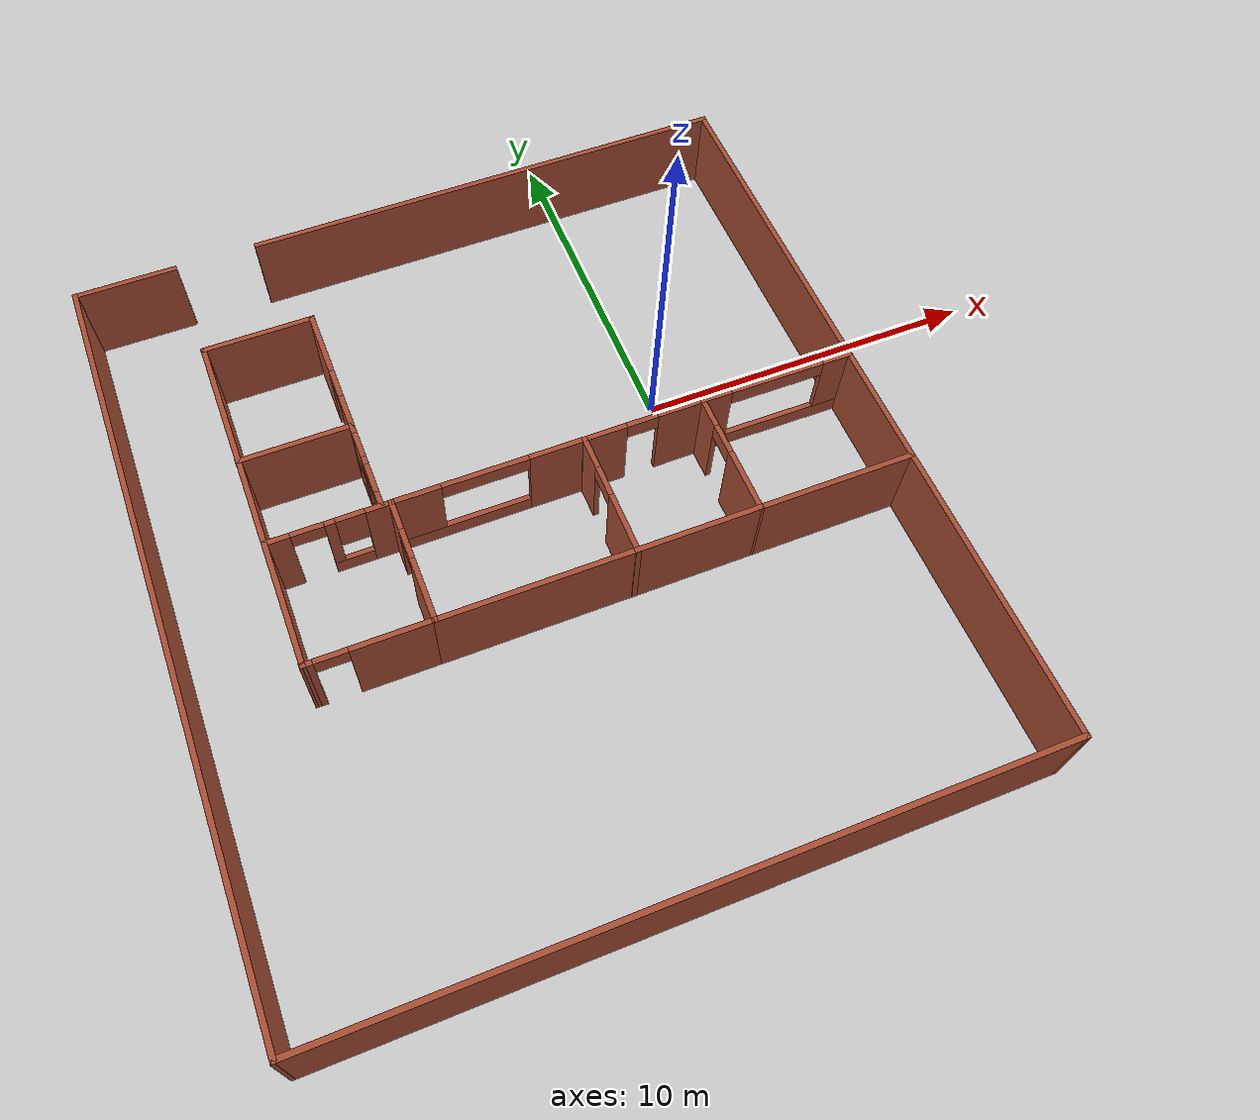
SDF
<?xml version='1.0'?>
<sdf version='1.7'>
  <model name='home'>
    <pose>-4.75168 -2.83982 0 0 -0 0</pose>
    <link name='Wall_102'>
      <collision name='Wall_102_Collision'>
        <geometry>
          <box>
            <size>4.5503 0.15 2.5</size>
          </box>
        </geometry>
        <pose>0 0 1.25 0 -0 0</pose>
      </collision>
      <visual name='Wall_102_Visual'>
        <pose>0 0 1.25 0 -0 0</pose>
        <geometry>
          <box>
            <size>4.5503 0.15 2.5</size>
          </box>
        </geometry>
        <material>
          <script>
            <uri>file://media/materials/scripts/gazebo.material</uri>
            <name>Gazebo/Bricks</name>
          </script>
          <ambient>1 1 1 1</ambient>
        </material>
        <meta>
          <layer>0</layer>
        </meta>
      </visual>
      <pose>7.542 -2.47535 0 0 -0 3.14159</pose>
    </link>
    <link name='Wall_105'>
      <pose>0.073453 10.8099 0 0 -0 0</pose>
      <visual name='Wall_105_Visual_0'>
        <pose>-8.32911 0 1.25 0 -0 0</pose>
        <geometry>
          <box>
            <size>2.84179 0.15 2.5</size>
          </box>
        </geometry>
        <material>
          <script>
            <uri>file://media/materials/scripts/gazebo.material</uri>
            <name>Gazebo/Bricks</name>
          </script>
          <ambient>1 1 1 1</ambient>
        </material>
        <meta>
          <layer>0</layer>
        </meta>
      </visual>
      <collision name='Wall_105_Collision_0'>
        <geometry>
          <box>
            <size>2.84179 0.15 2.5</size>
          </box>
        </geometry>
        <pose>-8.32911 0 1.25 0 -0 0</pose>
      </collision>
      <visual name='Wall_105_Visual_1'>
        <pose>2.57089 0 1.25 0 -0 0</pose>
        <geometry>
          <box>
            <size>14.3582 0.15 2.5</size>
          </box>
        </geometry>
        <material>
          <script>
            <uri>file://media/materials/scripts/gazebo.material</uri>
            <name>Gazebo/Bricks</name>
          </script>
          <ambient>1 1 1 1</ambient>
        </material>
        <meta>
          <layer>0</layer>
        </meta>
      </visual>
      <collision name='Wall_105_Collision_1'>
        <geometry>
          <box>
            <size>14.3582 0.15 2.5</size>
          </box>
        </geometry>
        <pose>2.57089 0 1.25 0 -0 0</pose>
      </collision>
    </link>
    <link name='Wall_110'>
      <pose>7.542 1.08566 0 0 -0 -0.007031</pose>
      <visual name='Wall_110_Visual_0'>
        <pose>-1.81389 0 1.25 0 -0 0</pose>
        <geometry>
          <box>
            <size>0.922511 0.15 2.5</size>
          </box>
        </geometry>
        <material>
          <script>
            <uri>file://media/materials/scripts/gazebo.material</uri>
            <name>Gazebo/Bricks</name>
          </script>
          <ambient>1 1 1 1</ambient>
        </material>
        <meta>
          <layer>0</layer>
        </meta>
      </visual>
      <collision name='Wall_110_Collision_0'>
        <geometry>
          <box>
            <size>0.922511 0.15 2.5</size>
          </box>
        </geometry>
        <pose>-1.81389 0 1.25 0 -0 0</pose>
      </collision>
      <visual name='Wall_110_Visual_1'>
        <pose>0.461255 0 0.25 0 -0 0</pose>
        <geometry>
          <box>
            <size>3.62778 0.15 0.5</size>
          </box>
        </geometry>
        <material>
          <script>
            <uri>file://media/materials/scripts/gazebo.material</uri>
            <name>Gazebo/Bricks</name>
          </script>
          <ambient>1 1 1 1</ambient>
        </material>
        <meta>
          <layer>0</layer>
        </meta>
      </visual>
      <collision name='Wall_110_Collision_1'>
        <geometry>
          <box>
            <size>3.62778 0.15 0.5</size>
          </box>
        </geometry>
        <pose>0.461255 0 0.25 0 -0 0</pose>
      </collision>
      <visual name='Wall_110_Visual_2'>
        <pose>1.82726 0 1.5 0 -0 0</pose>
        <geometry>
          <box>
            <size>0.895784 0.15 2</size>
          </box>
        </geometry>
        <material>
          <script>
            <uri>file://media/materials/scripts/gazebo.material</uri>
            <name>Gazebo/Bricks</name>
          </script>
          <ambient>1 1 1 1</ambient>
        </material>
        <meta>
          <layer>0</layer>
        </meta>
      </visual>
      <collision name='Wall_110_Collision_2'>
        <geometry>
          <box>
            <size>0.895784 0.15 2</size>
          </box>
        </geometry>
        <pose>1.82726 0 1.5 0 -0 0</pose>
      </collision>
      <visual name='Wall_110_Visual_3'>
        <pose>0.013363 0 2.25 0 -0 0</pose>
        <geometry>
          <box>
            <size>2.732 0.15 0.5</size>
          </box>
        </geometry>
        <material>
          <script>
            <uri>file://media/materials/scripts/gazebo.material</uri>
            <name>Gazebo/Bricks</name>
          </script>
          <ambient>1 1 1 1</ambient>
        </material>
        <meta>
          <layer>0</layer>
        </meta>
      </visual>
      <collision name='Wall_110_Collision_3'>
        <geometry>
          <box>
            <size>2.732 0.15 0.5</size>
          </box>
        </geometry>
        <pose>0.013363 0 2.25 0 -0 0</pose>
      </collision>
    </link>
    <link name='Wall_111'>
      <collision name='Wall_111_Collision'>
        <geometry>
          <box>
            <size>3.68548 0.15 2.5</size>
          </box>
        </geometry>
        <pose>0 0 1.25 0 -0 0</pose>
      </collision>
      <visual name='Wall_111_Visual'>
        <pose>0 0 1.25 0 -0 0</pose>
        <geometry>
          <box>
            <size>3.68548 0.15 2.5</size>
          </box>
        </geometry>
        <material>
          <script>
            <uri>file://media/materials/scripts/gazebo.material</uri>
            <name>Gazebo/Bricks</name>
          </script>
          <ambient>1 1 1 1</ambient>
        </material>
        <meta>
          <layer>0</layer>
        </meta>
      </visual>
      <pose>9.74215 -0.69755 0 0 -0 -1.5708</pose>
    </link>
    <link name='Wall_114'>
      <collision name='Wall_114_Collision'>
        <geometry>
          <box>
            <size>9.75 0.15 2.5</size>
          </box>
        </geometry>
        <pose>0 0 1.25 0 -0 0</pose>
      </collision>
      <visual name='Wall_114_Visual'>
        <pose>0 0 1.25 0 -0 0</pose>
        <geometry>
          <box>
            <size>9.75 0.15 2.5</size>
          </box>
        </geometry>
        <material>
          <script>
            <uri>file://media/materials/scripts/gazebo.material</uri>
            <name>Gazebo/Bricks</name>
          </script>
          <ambient>1 1 1 1</ambient>
        </material>
        <meta>
          <layer>0</layer>
        </meta>
      </visual>
      <pose>9.74215 5.90113 0 0 -0 1.5708</pose>
    </link>
    <link name='Wall_116'>
      <collision name='Wall_116_Collision'>
        <geometry>
          <box>
            <size>8.5 0.15 2.5</size>
          </box>
        </geometry>
        <pose>0 0 1.25 0 -0 0</pose>
      </collision>
      <visual name='Wall_116_Visual'>
        <pose>0 0 1.25 0 -0 0</pose>
        <geometry>
          <box>
            <size>8.5 0.15 2.5</size>
          </box>
        </geometry>
        <material>
          <script>
            <uri>file://media/materials/scripts/gazebo.material</uri>
            <name>Gazebo/Bricks</name>
          </script>
          <ambient>1 1 1 1</ambient>
        </material>
        <meta>
          <layer>0</layer>
        </meta>
      </visual>
      <pose>9.74215 -6.64029 0 0 -0 -1.5708</pose>
    </link>
    <link name='Wall_117'>
      <collision name='Wall_117_Collision'>
        <geometry>
          <box>
            <size>19.61 0.15 2.5</size>
          </box>
        </geometry>
        <pose>0 0 1.25 0 -0 0</pose>
      </collision>
      <visual name='Wall_117_Visual'>
        <pose>0 0 1.25 0 -0 0</pose>
        <geometry>
          <box>
            <size>19.61 0.15 2.5</size>
          </box>
        </geometry>
        <material>
          <script>
            <uri>file://media/materials/scripts/gazebo.material</uri>
            <name>Gazebo/Bricks</name>
          </script>
          <ambient>1 1 1 1</ambient>
        </material>
        <meta>
          <layer>0</layer>
        </meta>
      </visual>
      <pose>0.012142 -10.7999 0 0 -0 3.14002</pose>
    </link>
    <link name='Wall_118'>
      <collision name='Wall_118_Collision'>
        <geometry>
          <box>
            <size>21.75 0.15 2.5</size>
          </box>
        </geometry>
        <pose>0 0 1.25 0 -0 0</pose>
      </collision>
      <visual name='Wall_118_Visual'>
        <pose>0 0 1.25 0 -0 0</pose>
        <geometry>
          <box>
            <size>21.75 0.15 2.5</size>
          </box>
        </geometry>
        <material>
          <script>
            <uri>file://media/materials/scripts/gazebo.material</uri>
            <name>Gazebo/Bricks</name>
          </script>
          <ambient>1 1 1 1</ambient>
        </material>
        <meta>
          <layer>0</layer>
        </meta>
      </visual>
      <pose>-9.74845 0.015407 0 0 -0 1.5708</pose>
    </link>
    <link name='Wall_128'>
      <collision name='Wall_128_Collision'>
        <geometry>
          <box>
            <size>3.25 0.15 2.5</size>
          </box>
        </geometry>
        <pose>0 0 1.25 0 -0 0</pose>
      </collision>
      <visual name='Wall_128_Visual'>
        <pose>0 0 1.25 0 -0 0</pose>
        <geometry>
          <box>
            <size>3.25 0.15 2.5</size>
          </box>
        </geometry>
        <material>
          <script>
            <uri>file://media/materials/scripts/gazebo.material</uri>
            <name>Gazebo/Bricks</name>
          </script>
          <ambient>1 1 1 1</ambient>
        </material>
        <meta>
          <layer>0</layer>
        </meta>
      </visual>
      <pose>-5.25956 7.62772 0 0 -0 3.14159</pose>
    </link>
    <link name='Wall_134'>
      <pose>-3.71403 5.67265 0 0 -0 1.5708</pose>
      <visual name='Wall_134_Visual_0'>
        <pose>-1.44601 0 1.25 0 -0 0</pose>
        <geometry>
          <box>
            <size>1.10798 0.15 2.5</size>
          </box>
        </geometry>
        <material>
          <script>
            <uri>file://media/materials/scripts/gazebo.material</uri>
            <name>Gazebo/Bricks</name>
          </script>
          <ambient>1 1 1 1</ambient>
        </material>
        <meta>
          <layer>0</layer>
        </meta>
      </visual>
      <collision name='Wall_134_Collision_0'>
        <geometry>
          <box>
            <size>1.10798 0.15 2.5</size>
          </box>
        </geometry>
        <pose>-1.44601 0 1.25 0 -0 0</pose>
      </collision>
      <visual name='Wall_134_Visual_1'>
        <pose>1.00399 0 1.25 0 -0 0</pose>
        <geometry>
          <box>
            <size>1.99202 0.15 2.5</size>
          </box>
        </geometry>
        <material>
          <script>
            <uri>file://media/materials/scripts/gazebo.material</uri>
            <name>Gazebo/Bricks</name>
          </script>
          <ambient>1 1 1 1</ambient>
        </material>
        <meta>
          <layer>0</layer>
        </meta>
      </visual>
      <collision name='Wall_134_Collision_1'>
        <geometry>
          <box>
            <size>1.99202 0.15 2.5</size>
          </box>
        </geometry>
        <pose>1.00399 0 1.25 0 -0 0</pose>
      </collision>
      <visual name='Wall_134_Visual_2'>
        <pose>-0.442023 0 2.25 0 -0 0</pose>
        <geometry>
          <box>
            <size>0.9 0.15 0.5</size>
          </box>
        </geometry>
        <material>
          <script>
            <uri>file://media/materials/scripts/gazebo.material</uri>
            <name>Gazebo/Bricks</name>
          </script>
          <ambient>1 1 1 1</ambient>
        </material>
        <meta>
          <layer>0</layer>
        </meta>
      </visual>
      <collision name='Wall_134_Collision_2'>
        <geometry>
          <box>
            <size>0.9 0.15 0.5</size>
          </box>
        </geometry>
        <pose>-0.442023 0 2.25 0 -0 0</pose>
      </collision>
    </link>
    <link name='Wall_138'>
      <pose>-3.45599 -0.690284 0 0 -0 -1.57324</pose>
      <visual name='Wall_138_Visual_0'>
        <pose>-1.40379 0 1.25 0 -0 0</pose>
        <geometry>
          <box>
            <size>0.916195 0.15 2.5</size>
          </box>
        </geometry>
        <material>
          <script>
            <uri>file://media/materials/scripts/gazebo.material</uri>
            <name>Gazebo/Bricks</name>
          </script>
          <ambient>1 1 1 1</ambient>
        </material>
        <meta>
          <layer>0</layer>
        </meta>
      </visual>
      <collision name='Wall_138_Collision_0'>
        <geometry>
          <box>
            <size>0.916195 0.15 2.5</size>
          </box>
        </geometry>
        <pose>-1.40379 0 1.25 0 -0 0</pose>
      </collision>
      <visual name='Wall_138_Visual_1'>
        <pose>0.908098 0 1.25 0 -0 0</pose>
        <geometry>
          <box>
            <size>1.90758 0.15 2.5</size>
          </box>
        </geometry>
        <material>
          <script>
            <uri>file://media/materials/scripts/gazebo.material</uri>
            <name>Gazebo/Bricks</name>
          </script>
          <ambient>1 1 1 1</ambient>
        </material>
        <meta>
          <layer>0</layer>
        </meta>
      </visual>
      <collision name='Wall_138_Collision_1'>
        <geometry>
          <box>
            <size>1.90758 0.15 2.5</size>
          </box>
        </geometry>
        <pose>0.908098 0 1.25 0 -0 0</pose>
      </collision>
      <visual name='Wall_138_Visual_2'>
        <pose>-0.495693 0 2.25 0 -0 0</pose>
        <geometry>
          <box>
            <size>0.9 0.15 0.5</size>
          </box>
        </geometry>
        <material>
          <script>
            <uri>file://media/materials/scripts/gazebo.material</uri>
            <name>Gazebo/Bricks</name>
          </script>
          <ambient>1 1 1 1</ambient>
        </material>
        <meta>
          <layer>0</layer>
        </meta>
      </visual>
      <collision name='Wall_138_Collision_2'>
        <geometry>
          <box>
            <size>0.9 0.15 0.5</size>
          </box>
        </geometry>
        <pose>-0.495693 0 2.25 0 -0 0</pose>
      </collision>
    </link>
    <link name='Wall_139'>
      <pose>-5.1441 -2.47717 0 0 -0 3.14159</pose>
      <visual name='Wall_139_Visual_0'>
        <pose>-0.614696 0 1.25 0 -0 0</pose>
        <geometry>
          <box>
            <size>2.27061 0.15 2.5</size>
          </box>
        </geometry>
        <material>
          <script>
            <uri>file://media/materials/scripts/gazebo.material</uri>
            <name>Gazebo/Bricks</name>
          </script>
          <ambient>1 1 1 1</ambient>
        </material>
        <meta>
          <layer>0</layer>
        </meta>
      </visual>
      <collision name='Wall_139_Collision_0'>
        <geometry>
          <box>
            <size>2.27061 0.15 2.5</size>
          </box>
        </geometry>
        <pose>-0.614696 0 1.25 0 -0 0</pose>
      </collision>
      <visual name='Wall_139_Visual_1'>
        <pose>1.5853 0 1.25 0 -0 0</pose>
        <geometry>
          <box>
            <size>0.329391 0.15 2.5</size>
          </box>
        </geometry>
        <material>
          <script>
            <uri>file://media/materials/scripts/gazebo.material</uri>
            <name>Gazebo/Bricks</name>
          </script>
          <ambient>1 1 1 1</ambient>
        </material>
        <meta>
          <layer>0</layer>
        </meta>
      </visual>
      <collision name='Wall_139_Collision_1'>
        <geometry>
          <box>
            <size>0.329391 0.15 2.5</size>
          </box>
        </geometry>
        <pose>1.5853 0 1.25 0 -0 0</pose>
      </collision>
      <visual name='Wall_139_Visual_2'>
        <pose>0.970609 0 2.25 0 -0 0</pose>
        <geometry>
          <box>
            <size>0.9 0.15 0.5</size>
          </box>
        </geometry>
        <material>
          <script>
            <uri>file://media/materials/scripts/gazebo.material</uri>
            <name>Gazebo/Bricks</name>
          </script>
          <ambient>1 1 1 1</ambient>
        </material>
        <meta>
          <layer>0</layer>
        </meta>
      </visual>
      <collision name='Wall_139_Collision_2'>
        <geometry>
          <box>
            <size>0.9 0.15 0.5</size>
          </box>
        </geometry>
        <pose>0.970609 0 2.25 0 -0 0</pose>
      </collision>
    </link>
    <link name='Wall_140'>
      <collision name='Wall_140_Collision'>
        <geometry>
          <box>
            <size>10.2238 0.15 2.5</size>
          </box>
        </geometry>
        <pose>0 0 1.25 0 -0 0</pose>
      </collision>
      <visual name='Wall_140_Visual'>
        <pose>0 0 1.25 0 -0 0</pose>
        <geometry>
          <box>
            <size>10.2238 0.15 2.5</size>
          </box>
        </geometry>
        <material>
          <script>
            <uri>file://media/materials/scripts/gazebo.material</uri>
            <name>Gazebo/Bricks</name>
          </script>
          <ambient>1 1 1 1</ambient>
        </material>
        <meta>
          <layer>0</layer>
        </meta>
      </visual>
      <pose>-6.80599 2.55972 0 0 -0 1.56993</pose>
    </link>
    <link name='Wall_142'>
      <collision name='Wall_142_Collision'>
        <geometry>
          <box>
            <size>3.25 0.15 2.5</size>
          </box>
        </geometry>
        <pose>0 0 1.25 0 -0 0</pose>
      </collision>
      <visual name='Wall_142_Visual'>
        <pose>0 0 1.25 0 -0 0</pose>
        <geometry>
          <box>
            <size>3.25 0.15 2.5</size>
          </box>
        </geometry>
        <material>
          <script>
            <uri>file://media/materials/scripts/gazebo.material</uri>
            <name>Gazebo/Bricks</name>
          </script>
          <ambient>1 1 1 1</ambient>
        </material>
        <meta>
          <layer>0</layer>
        </meta>
      </visual>
      <pose>-5.26403 3.74764 0 0 -0 3.14159</pose>
    </link>
    <link name='Wall_144'>
      <pose>-5.12661 1.0966 0 0 -0 3.14159</pose>
      <visual name='Wall_144_Visual_0'>
        <pose>-1.35862 0 1.25 0 -0 0</pose>
        <geometry>
          <box>
            <size>0.782765 0.15 2.5</size>
          </box>
        </geometry>
        <material>
          <script>
            <uri>file://media/materials/scripts/gazebo.material</uri>
            <name>Gazebo/Bricks</name>
          </script>
          <ambient>1 1 1 1</ambient>
        </material>
        <meta>
          <layer>0</layer>
        </meta>
      </visual>
      <collision name='Wall_144_Collision_0'>
        <geometry>
          <box>
            <size>0.782765 0.15 2.5</size>
          </box>
        </geometry>
        <pose>-1.35862 0 1.25 0 -0 0</pose>
      </collision>
      <visual name='Wall_144_Visual_1'>
        <pose>1.3863 0 1.25 0 -0 0</pose>
        <geometry>
          <box>
            <size>0.7274 0.15 2.5</size>
          </box>
        </geometry>
        <material>
          <script>
            <uri>file://media/materials/scripts/gazebo.material</uri>
            <name>Gazebo/Bricks</name>
          </script>
          <ambient>1 1 1 1</ambient>
        </material>
        <meta>
          <layer>0</layer>
        </meta>
      </visual>
      <collision name='Wall_144_Collision_1'>
        <geometry>
          <box>
            <size>0.7274 0.15 2.5</size>
          </box>
        </geometry>
        <pose>1.3863 0 1.25 0 -0 0</pose>
      </collision>
      <visual name='Wall_144_Visual_2'>
        <pose>-0.422317 0 0.25 0 -0 0</pose>
        <geometry>
          <box>
            <size>1.08984 0.15 0.5</size>
          </box>
        </geometry>
        <material>
          <script>
            <uri>file://media/materials/scripts/gazebo.material</uri>
            <name>Gazebo/Bricks</name>
          </script>
          <ambient>1 1 1 1</ambient>
        </material>
        <meta>
          <layer>0</layer>
        </meta>
      </visual>
      <collision name='Wall_144_Collision_2'>
        <geometry>
          <box>
            <size>1.08984 0.15 0.5</size>
          </box>
        </geometry>
        <pose>-0.422317 0 0.25 0 -0 0</pose>
      </collision>
      <visual name='Wall_144_Visual_3'>
        <pose>-0.022317 0 1.5 0 -0 0</pose>
        <geometry>
          <box>
            <size>0.289835 0.15 2</size>
          </box>
        </geometry>
        <material>
          <script>
            <uri>file://media/materials/scripts/gazebo.material</uri>
            <name>Gazebo/Bricks</name>
          </script>
          <ambient>1 1 1 1</ambient>
        </material>
        <meta>
          <layer>0</layer>
        </meta>
      </visual>
      <collision name='Wall_144_Collision_3'>
        <geometry>
          <box>
            <size>0.289835 0.15 2</size>
          </box>
        </geometry>
        <pose>-0.022317 0 1.5 0 -0 0</pose>
      </collision>
      <visual name='Wall_144_Visual_4'>
        <pose>-0.567235 0 1.9 0 -0 0</pose>
        <geometry>
          <box>
            <size>0.8 0.15 1.2</size>
          </box>
        </geometry>
        <material>
          <script>
            <uri>file://media/materials/scripts/gazebo.material</uri>
            <name>Gazebo/Bricks</name>
          </script>
          <ambient>1 1 1 1</ambient>
        </material>
        <meta>
          <layer>0</layer>
        </meta>
      </visual>
      <collision name='Wall_144_Collision_4'>
        <geometry>
          <box>
            <size>0.8 0.15 1.2</size>
          </box>
        </geometry>
        <pose>-0.567235 0 1.9 0 -0 0</pose>
      </collision>
      <visual name='Wall_144_Visual_5'>
        <pose>0.5726 0 2.25 0 -0 0</pose>
        <geometry>
          <box>
            <size>0.9 0.15 0.5</size>
          </box>
        </geometry>
        <material>
          <script>
            <uri>file://media/materials/scripts/gazebo.material</uri>
            <name>Gazebo/Bricks</name>
          </script>
          <ambient>1 1 1 1</ambient>
        </material>
        <meta>
          <layer>0</layer>
        </meta>
      </visual>
      <collision name='Wall_144_Collision_5'>
        <geometry>
          <box>
            <size>0.9 0.15 0.5</size>
          </box>
        </geometry>
        <pose>0.5726 0 2.25 0 -0 0</pose>
      </collision>
    </link>
    <link name='Wall_146'>
      <pose>-3.71403 2.44765 0 0 -0 -1.5708</pose>
      <visual name='Wall_146_Visual_0'>
        <pose>-1.21483 0 1.25 0 -0 0</pose>
        <geometry>
          <box>
            <size>0.320338 0.15 2.5</size>
          </box>
        </geometry>
        <material>
          <script>
            <uri>file://media/materials/scripts/gazebo.material</uri>
            <name>Gazebo/Bricks</name>
          </script>
          <ambient>1 1 1 1</ambient>
        </material>
        <meta>
          <layer>0</layer>
        </meta>
      </visual>
      <collision name='Wall_146_Collision_0'>
        <geometry>
          <box>
            <size>0.320338 0.15 2.5</size>
          </box>
        </geometry>
        <pose>-1.21483 0 1.25 0 -0 0</pose>
      </collision>
      <visual name='Wall_146_Visual_1'>
        <pose>1.13923 0 1.25 0 -0 0</pose>
        <geometry>
          <box>
            <size>0.471531 0.15 2.5</size>
          </box>
        </geometry>
        <material>
          <script>
            <uri>file://media/materials/scripts/gazebo.material</uri>
            <name>Gazebo/Bricks</name>
          </script>
          <ambient>1 1 1 1</ambient>
        </material>
        <meta>
          <layer>0</layer>
        </meta>
      </visual>
      <collision name='Wall_146_Collision_1'>
        <geometry>
          <box>
            <size>0.471531 0.15 2.5</size>
          </box>
        </geometry>
        <pose>1.13923 0 1.25 0 -0 0</pose>
      </collision>
      <visual name='Wall_146_Visual_2'>
        <pose>-0.525596 0 0.25 0 -0 0</pose>
        <geometry>
          <box>
            <size>1.05813 0.15 0.5</size>
          </box>
        </geometry>
        <material>
          <script>
            <uri>file://media/materials/scripts/gazebo.material</uri>
            <name>Gazebo/Bricks</name>
          </script>
          <ambient>1 1 1 1</ambient>
        </material>
        <meta>
          <layer>0</layer>
        </meta>
      </visual>
      <collision name='Wall_146_Collision_2'>
        <geometry>
          <box>
            <size>1.05813 0.15 0.5</size>
          </box>
        </geometry>
        <pose>-0.525596 0 0.25 0 -0 0</pose>
      </collision>
      <visual name='Wall_146_Visual_3'>
        <pose>-0.125596 0 1.5 0 -0 0</pose>
        <geometry>
          <box>
            <size>0.258131 0.15 2</size>
          </box>
        </geometry>
        <material>
          <script>
            <uri>file://media/materials/scripts/gazebo.material</uri>
            <name>Gazebo/Bricks</name>
          </script>
          <ambient>1 1 1 1</ambient>
        </material>
        <meta>
          <layer>0</layer>
        </meta>
      </visual>
      <collision name='Wall_146_Collision_3'>
        <geometry>
          <box>
            <size>0.258131 0.15 2</size>
          </box>
        </geometry>
        <pose>-0.125596 0 1.5 0 -0 0</pose>
      </collision>
      <visual name='Wall_146_Visual_4'>
        <pose>-0.654662 0 1.9 0 -0 0</pose>
        <geometry>
          <box>
            <size>0.8 0.15 1.2</size>
          </box>
        </geometry>
        <material>
          <script>
            <uri>file://media/materials/scripts/gazebo.material</uri>
            <name>Gazebo/Bricks</name>
          </script>
          <ambient>1 1 1 1</ambient>
        </material>
        <meta>
          <layer>0</layer>
        </meta>
      </visual>
      <collision name='Wall_146_Collision_4'>
        <geometry>
          <box>
            <size>0.8 0.15 1.2</size>
          </box>
        </geometry>
        <pose>-0.654662 0 1.9 0 -0 0</pose>
      </collision>
      <visual name='Wall_146_Visual_5'>
        <pose>0.453469 0 2.25 0 -0 0</pose>
        <geometry>
          <box>
            <size>0.9 0.15 0.5</size>
          </box>
        </geometry>
        <material>
          <script>
            <uri>file://media/materials/scripts/gazebo.material</uri>
            <name>Gazebo/Bricks</name>
          </script>
          <ambient>1 1 1 1</ambient>
        </material>
        <meta>
          <layer>0</layer>
        </meta>
      </visual>
      <collision name='Wall_146_Collision_5'>
        <geometry>
          <box>
            <size>0.9 0.15 0.5</size>
          </box>
        </geometry>
        <pose>0.453469 0 2.25 0 -0 0</pose>
      </collision>
    </link>
    <link name='Wall_80'>
      <collision name='Wall_80_Collision'>
        <geometry>
          <box>
            <size>3.58583 0.15 2.5</size>
          </box>
        </geometry>
        <pose>0 0 1.25 0 -0 0</pose>
      </collision>
      <visual name='Wall_80_Visual'>
        <pose>0 0 1.25 0 -0 0</pose>
        <geometry>
          <box>
            <size>3.58583 0.15 2.5</size>
          </box>
        </geometry>
        <material>
          <script>
            <uri>file://media/materials/scripts/gazebo.material</uri>
            <name>Gazebo/Bricks</name>
          </script>
          <ambient>1 1 1 1</ambient>
        </material>
        <meta>
          <layer>0</layer>
        </meta>
      </visual>
      <pose>3.62395 -2.47761 0 0 -0 0.001318</pose>
    </link>
    <link name='Wall_81'>
      <pose>5.34186 -0.687109 0 0 -0 1.5708</pose>
      <visual name='Wall_81_Visual_0'>
        <pose>-0.921951 0 1.25 0 -0 0</pose>
        <geometry>
          <box>
            <size>1.88257 0.15 2.5</size>
          </box>
        </geometry>
        <material>
          <script>
            <uri>file://media/materials/scripts/gazebo.material</uri>
            <name>Gazebo/Bricks</name>
          </script>
          <ambient>1 1 1 1</ambient>
        </material>
        <meta>
          <layer>0</layer>
        </meta>
      </visual>
      <collision name='Wall_81_Collision_0'>
        <geometry>
          <box>
            <size>1.88257 0.15 2.5</size>
          </box>
        </geometry>
        <pose>-0.921951 0 1.25 0 -0 0</pose>
      </collision>
      <visual name='Wall_81_Visual_1'>
        <pose>1.39129 0 1.25 0 -0 0</pose>
        <geometry>
          <box>
            <size>0.943903 0.15 2.5</size>
          </box>
        </geometry>
        <material>
          <script>
            <uri>file://media/materials/scripts/gazebo.material</uri>
            <name>Gazebo/Bricks</name>
          </script>
          <ambient>1 1 1 1</ambient>
        </material>
        <meta>
          <layer>0</layer>
        </meta>
      </visual>
      <collision name='Wall_81_Collision_1'>
        <geometry>
          <box>
            <size>0.943903 0.15 2.5</size>
          </box>
        </geometry>
        <pose>1.39129 0 1.25 0 -0 0</pose>
      </collision>
      <visual name='Wall_81_Visual_2'>
        <pose>0.469334 0 2.25 0 -0 0</pose>
        <geometry>
          <box>
            <size>0.9 0.15 0.5</size>
          </box>
        </geometry>
        <material>
          <script>
            <uri>file://media/materials/scripts/gazebo.material</uri>
            <name>Gazebo/Bricks</name>
          </script>
          <ambient>1 1 1 1</ambient>
        </material>
        <meta>
          <layer>0</layer>
        </meta>
      </visual>
      <collision name='Wall_81_Collision_2'>
        <geometry>
          <box>
            <size>0.9 0.15 0.5</size>
          </box>
        </geometry>
        <pose>0.469334 0 2.25 0 -0 0</pose>
      </collision>
    </link>
    <link name='Wall_82'>
      <pose>3.62012 1.09886 0 0 -0 -3.14028</pose>
      <visual name='Wall_82_Visual_0'>
        <pose>-1.09624 0 1.25 0 -0 0</pose>
        <geometry>
          <box>
            <size>1.40099 0.15 2.5</size>
          </box>
        </geometry>
        <material>
          <script>
            <uri>file://media/materials/scripts/gazebo.material</uri>
            <name>Gazebo/Bricks</name>
          </script>
          <ambient>1 1 1 1</ambient>
        </material>
        <meta>
          <layer>0</layer>
        </meta>
      </visual>
      <collision name='Wall_82_Collision_0'>
        <geometry>
          <box>
            <size>1.40099 0.15 2.5</size>
          </box>
        </geometry>
        <pose>-1.09624 0 1.25 0 -0 0</pose>
      </collision>
      <visual name='Wall_82_Visual_1'>
        <pose>1.1505 0 1.25 0 -0 0</pose>
        <geometry>
          <box>
            <size>1.29248 0.15 2.5</size>
          </box>
        </geometry>
        <material>
          <script>
            <uri>file://media/materials/scripts/gazebo.material</uri>
            <name>Gazebo/Bricks</name>
          </script>
          <ambient>1 1 1 1</ambient>
        </material>
        <meta>
          <layer>0</layer>
        </meta>
      </visual>
      <collision name='Wall_82_Collision_1'>
        <geometry>
          <box>
            <size>1.29248 0.15 2.5</size>
          </box>
        </geometry>
        <pose>1.1505 0 1.25 0 -0 0</pose>
      </collision>
      <visual name='Wall_82_Visual_2'>
        <pose>0.054257 0 2.25 0 -0 0</pose>
        <geometry>
          <box>
            <size>0.9 0.15 0.5</size>
          </box>
        </geometry>
        <material>
          <script>
            <uri>file://media/materials/scripts/gazebo.material</uri>
            <name>Gazebo/Bricks</name>
          </script>
          <ambient>1 1 1 1</ambient>
        </material>
        <meta>
          <layer>0</layer>
        </meta>
      </visual>
      <collision name='Wall_82_Collision_2'>
        <geometry>
          <box>
            <size>0.9 0.15 0.5</size>
          </box>
        </geometry>
        <pose>0.054257 0 2.25 0 -0 0</pose>
      </collision>
    </link>
    <link name='Wall_83'>
      <pose>1.91095 -0.700383 0 0 -0 -1.56866</pose>
      <visual name='Wall_83_Visual_0'>
        <pose>-1.36298 0 1.25 0 -0 0</pose>
        <geometry>
          <box>
            <size>1.00052 0.15 2.5</size>
          </box>
        </geometry>
        <material>
          <script>
            <uri>file://media/materials/scripts/gazebo.material</uri>
            <name>Gazebo/Bricks</name>
          </script>
          <ambient>1 1 1 1</ambient>
        </material>
        <meta>
          <layer>0</layer>
        </meta>
      </visual>
      <collision name='Wall_83_Collision_0'>
        <geometry>
          <box>
            <size>1.00052 0.15 2.5</size>
          </box>
        </geometry>
        <pose>-1.36298 0 1.25 0 -0 0</pose>
      </collision>
      <visual name='Wall_83_Visual_1'>
        <pose>0.950258 0 1.25 0 -0 0</pose>
        <geometry>
          <box>
            <size>1.82597 0.15 2.5</size>
          </box>
        </geometry>
        <material>
          <script>
            <uri>file://media/materials/scripts/gazebo.material</uri>
            <name>Gazebo/Bricks</name>
          </script>
          <ambient>1 1 1 1</ambient>
        </material>
        <meta>
          <layer>0</layer>
        </meta>
      </visual>
      <collision name='Wall_83_Collision_1'>
        <geometry>
          <box>
            <size>1.82597 0.15 2.5</size>
          </box>
        </geometry>
        <pose>0.950258 0 1.25 0 -0 0</pose>
      </collision>
      <visual name='Wall_83_Visual_2'>
        <pose>-0.412724 0 2.25 0 -0 0</pose>
        <geometry>
          <box>
            <size>0.9 0.15 0.5</size>
          </box>
        </geometry>
        <material>
          <script>
            <uri>file://media/materials/scripts/gazebo.material</uri>
            <name>Gazebo/Bricks</name>
          </script>
          <ambient>1 1 1 1</ambient>
        </material>
        <meta>
          <layer>0</layer>
        </meta>
      </visual>
      <collision name='Wall_83_Collision_2'>
        <geometry>
          <box>
            <size>0.9 0.15 0.5</size>
          </box>
        </geometry>
        <pose>-0.412724 0 2.25 0 -0 0</pose>
      </collision>
    </link>
    <link name='Wall_84'>
      <collision name='Wall_84_Collision'>
        <geometry>
          <box>
            <size>5.5 0.15 2.5</size>
          </box>
        </geometry>
        <pose>0 0 1.25 0 -0 0</pose>
      </collision>
      <visual name='Wall_84_Visual'>
        <pose>0 0 1.25 0 -0 0</pose>
        <geometry>
          <box>
            <size>5.5 0.15 2.5</size>
          </box>
        </geometry>
        <material>
          <script>
            <uri>file://media/materials/scripts/gazebo.material</uri>
            <name>Gazebo/Bricks</name>
          </script>
          <ambient>1 1 1 1</ambient>
        </material>
        <meta>
          <layer>0</layer>
        </meta>
      </visual>
      <pose>-0.768966 -2.47987 0 0 -0 3.14159</pose>
    </link>
    <link name='Wall_96'>
      <pose>-0.776613 1.0966 0 0 -0 3.14159</pose>
      <visual name='Wall_96_Visual_0'>
        <pose>-1.92854 0 1.25 0 -0 0</pose>
        <geometry>
          <box>
            <size>1.64292 0.15 2.5</size>
          </box>
        </geometry>
        <material>
          <script>
            <uri>file://media/materials/scripts/gazebo.material</uri>
            <name>Gazebo/Bricks</name>
          </script>
          <ambient>1 1 1 1</ambient>
        </material>
        <meta>
          <layer>0</layer>
        </meta>
      </visual>
      <collision name='Wall_96_Collision_0'>
        <geometry>
          <box>
            <size>1.64292 0.15 2.5</size>
          </box>
        </geometry>
        <pose>-1.92854 0 1.25 0 -0 0</pose>
      </collision>
      <visual name='Wall_96_Visual_1'>
        <pose>0.821461 0 0.25 0 -0 0</pose>
        <geometry>
          <box>
            <size>3.85708 0.15 0.5</size>
          </box>
        </geometry>
        <material>
          <script>
            <uri>file://media/materials/scripts/gazebo.material</uri>
            <name>Gazebo/Bricks</name>
          </script>
          <ambient>1 1 1 1</ambient>
        </material>
        <meta>
          <layer>0</layer>
        </meta>
      </visual>
      <collision name='Wall_96_Collision_1'>
        <geometry>
          <box>
            <size>3.85708 0.15 0.5</size>
          </box>
        </geometry>
        <pose>0.821461 0 0.25 0 -0 0</pose>
      </collision>
      <visual name='Wall_96_Visual_2'>
        <pose>2.03896 0 1.5 0 -0 0</pose>
        <geometry>
          <box>
            <size>1.42208 0.15 2</size>
          </box>
        </geometry>
        <material>
          <script>
            <uri>file://media/materials/scripts/gazebo.material</uri>
            <name>Gazebo/Bricks</name>
          </script>
          <ambient>1 1 1 1</ambient>
        </material>
        <meta>
          <layer>0</layer>
        </meta>
      </visual>
      <collision name='Wall_96_Collision_2'>
        <geometry>
          <box>
            <size>1.42208 0.15 2</size>
          </box>
        </geometry>
        <pose>2.03896 0 1.5 0 -0 0</pose>
      </collision>
      <visual name='Wall_96_Visual_3'>
        <pose>0.110421 0 2.25 0 -0 0</pose>
        <geometry>
          <box>
            <size>2.435 0.15 0.5</size>
          </box>
        </geometry>
        <material>
          <script>
            <uri>file://media/materials/scripts/gazebo.material</uri>
            <name>Gazebo/Bricks</name>
          </script>
          <ambient>1 1 1 1</ambient>
        </material>
        <meta>
          <layer>0</layer>
        </meta>
      </visual>
      <collision name='Wall_96_Collision_3'>
        <geometry>
          <box>
            <size>2.435 0.15 0.5</size>
          </box>
        </geometry>
        <pose>0.110421 0 2.25 0 -0 0</pose>
      </collision>
    </link>
    <static>1</static>
  </model>
</sdf>
